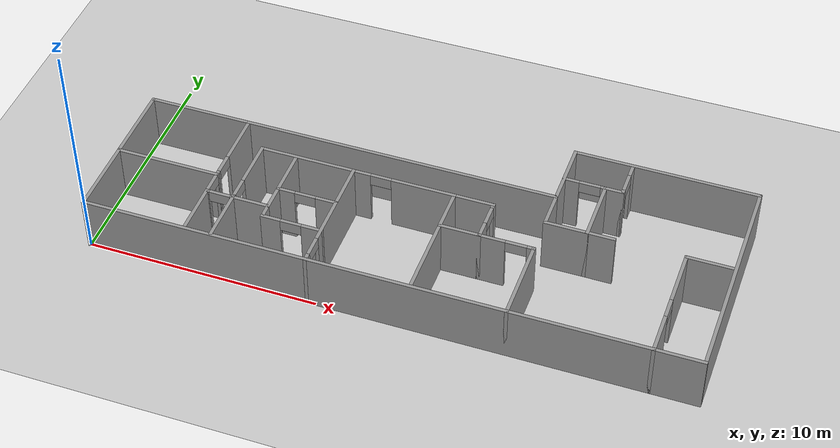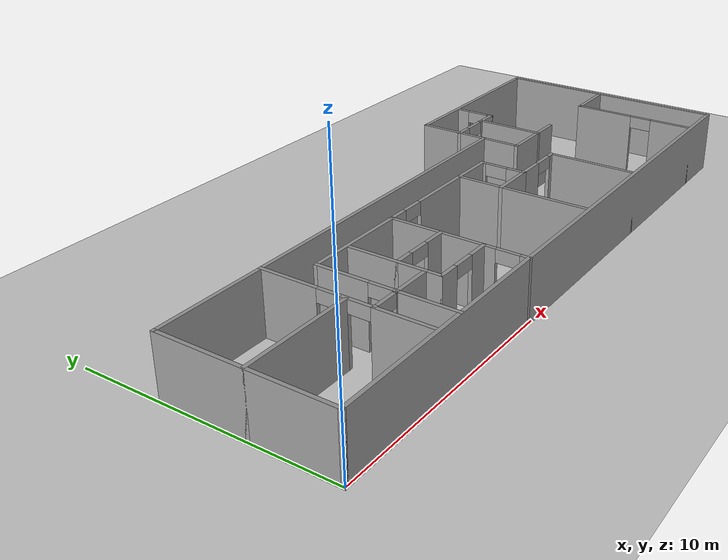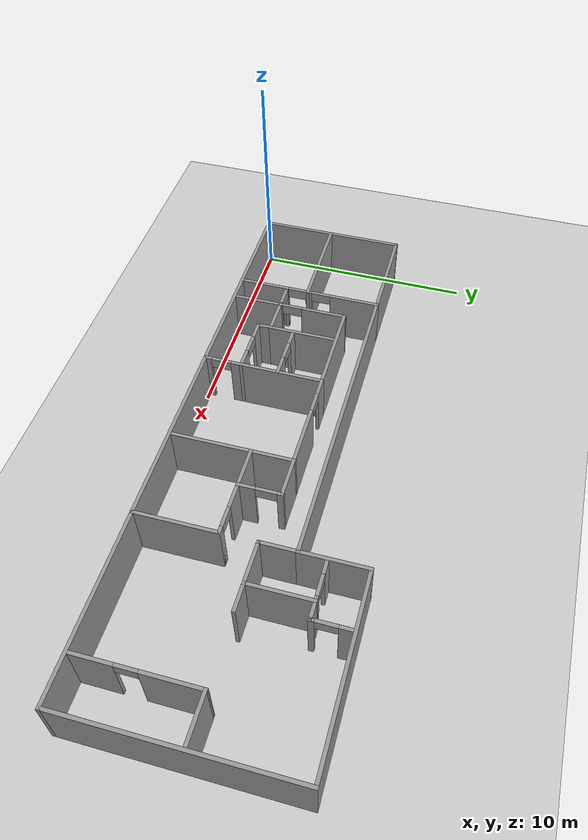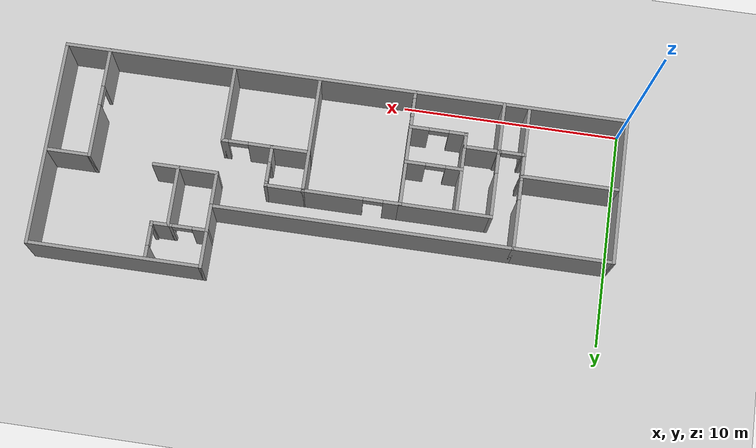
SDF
<sdf version="1.6">
 <world name="default">
  <model name="ground_plane">
   <static>1</static>
   <link name="link">
    <collision name="collision">
     <geometry><plane><normal>0 0 1</normal><size>100 100</size></plane></geometry>
     <surface>
      <contact><collide_bitmask>65535</collide_bitmask></contact>
      <friction><ode><mu>100</mu><mu2>50</mu2></ode></friction>
     </surface>
    </collision>
    <visual name="visual">
     <cast_shadows>0</cast_shadows>
     <geometry><plane><normal>0 0 1</normal><size>100 100</size></plane></geometry>
     <material>
      <script><uri>file://media/materials/scripts/gazebo.material</uri><name>Gazebo/Grey</name></script>
     </material>
    </visual>
   </link>
  </model>
  <model name="myBuilding">
   <pose>12.88 4.72 0 0 -0 0</pose>
   <link name="Wall_13">
    <collision name="Wall_13_Collision">
     <geometry><box><size>6.78 0.15 2.5</size></box></geometry>
     <pose>0 0 1.25 0 -0 0</pose>
    </collision>
    <visual name="Wall_13_Visual">
     <pose>0 0 1.25 0 -0 0</pose>
     <geometry><box><size>6.78 0.15 2.5</size></box></geometry>
     <material>
      <script><uri>file://media/materials/scripts/gazebo.material</uri><name>Gazebo/Grey</name></script>
      <ambient>1 1 1 1</ambient>
     </material>
     <meta><layer>0</layer></meta>
    </visual>
    <pose>-12.88 -1.405 0 0 -0 1.5708</pose>
   </link>
   <link name="Wall_17">
    <collision name="Wall_17_Collision">
     <geometry><box><size>9.5 0.15 2.5</size></box></geometry>
     <pose>0 0 1.25 0 -0 0</pose>
    </collision>
    <visual name="Wall_17_Visual">
     <pose>0 0 1.25 0 -0 0</pose>
     <geometry><box><size>9.5 0.15 2.5</size></box></geometry>
     <material>
      <script><uri>file://media/materials/scripts/gazebo.material</uri><name>Gazebo/Grey</name></script>
      <ambient>1 1 1 1</ambient>
     </material>
     <meta><layer>0</layer></meta>
    </visual>
    <pose>12.88 0.045 0 0 0 -1.5708</pose>
   </link>
   <link name="Wall_19">
    <collision name="Wall_19_Collision">
     <geometry><box><size>4.58 0.15 2.5</size></box></geometry>
     <pose>0 0 1.25 0 -0 0</pose>
    </collision>
    <visual name="Wall_19_Visual">
     <pose>0 0 1.25 0 -0 0</pose>
     <geometry><box><size>4.58 0.15 2.5</size></box></geometry>
     <material>
      <script><uri>file://media/materials/scripts/gazebo.material</uri><name>Gazebo/Grey</name></script>
      <ambient>1 1 1 1</ambient>
     </material>
     <meta><layer>0</layer></meta>
    </visual>
    <pose>-10.665 -1.45 0 0 -0 0</pose>
   </link>
   <link name="Wall_22">
    <pose>-8.45 -3.01 0 0 0 -1.5708</pose>
    <visual name="Wall_22_Visual_0">
     <pose>-1.57168 0 1.25 0 -0 0</pose>
     <geometry><box><size>0.126638 0.15 2.5</size></box></geometry>
     <material>
      <script><uri>file://media/materials/scripts/gazebo.material</uri><name>Gazebo/Grey</name></script>
      <ambient>1 1 1 1</ambient>
     </material>
     <meta><layer>0</layer></meta>
    </visual>
    <collision name="Wall_22_Collision_0">
     <geometry><box><size>0.126638 0.15 2.5</size></box></geometry>
     <pose>-1.57168 0 1.25 0 -0 0</pose>
    </collision>
    <visual name="Wall_22_Visual_1">
     <pose>0.503319 0 1.25 0 -0 0</pose>
     <geometry><box><size>2.26336 0.15 2.5</size></box></geometry>
     <material>
      <script><uri>file://media/materials/scripts/gazebo.material</uri><name>Gazebo/Grey</name></script>
      <ambient>1 1 1 1</ambient>
     </material>
     <meta><layer>0</layer></meta>
    </visual>
    <collision name="Wall_22_Collision_1">
     <geometry><box><size>2.26336 0.15 2.5</size></box></geometry>
     <pose>0.503319 0 1.25 0 -0 0</pose>
    </collision>
    <visual name="Wall_22_Visual_2">
     <pose>-1.06836 0 2.25 0 -0 0</pose>
     <geometry><box><size>0.88 0.15 0.5</size></box></geometry>
     <material>
      <script><uri>file://media/materials/scripts/gazebo.material</uri><name>Gazebo/Grey</name></script>
      <ambient>1 1 1 1</ambient>
     </material>
     <meta><layer>0</layer></meta>
    </visual>
    <collision name="Wall_22_Collision_2">
     <geometry><box><size>0.88 0.15 0.5</size></box></geometry>
     <pose>-1.06836 0 2.25 0 -0 0</pose>
    </collision>
   </link>
   <link name="Wall_24">
    <collision name="Wall_24_Collision">
     <geometry><box><size>4.58 0.15 2.5</size></box></geometry>
     <pose>0 0 1.25 0 -0 0</pose>
    </collision>
    <visual name="Wall_24_Visual">
     <pose>0 0 1.25 0 -0 0</pose>
     <geometry><box><size>4.58 0.15 2.5</size></box></geometry>
     <material>
      <script><uri>file://media/materials/scripts/gazebo.material</uri><name>Gazebo/Grey</name></script>
      <ambient>1 1 1 1</ambient>
     </material>
     <meta><layer>0</layer></meta>
    </visual>
    <pose>-10.665 1.91 0 0 -0 0</pose>
   </link>
   <link name="Wall_28">
    <pose>-8.45 0.23 0 0 0 -1.5708</pose>
    <visual name="Wall_28_Visual_0">
     <pose>-0.591583 0 1.25 0 -0 0</pose>
     <geometry><box><size>2.32683 0.15 2.5</size></box></geometry>
     <material>
      <script><uri>file://media/materials/scripts/gazebo.material</uri><name>Gazebo/Grey</name></script>
      <ambient>1 1 1 1</ambient>
     </material>
     <meta><layer>0</layer></meta>
    </visual>
    <collision name="Wall_28_Collision_0">
     <geometry><box><size>2.32683 0.15 2.5</size></box></geometry>
     <pose>-0.591583 0 1.25 0 -0 0</pose>
    </collision>
    <visual name="Wall_28_Visual_1">
     <pose>1.61342 0 1.25 0 -0 0</pose>
     <geometry><box><size>0.283165 0.15 2.5</size></box></geometry>
     <material>
      <script><uri>file://media/materials/scripts/gazebo.material</uri><name>Gazebo/Grey</name></script>
      <ambient>1 1 1 1</ambient>
     </material>
     <meta><layer>0</layer></meta>
    </visual>
    <collision name="Wall_28_Collision_1">
     <geometry><box><size>0.283165 0.15 2.5</size></box></geometry>
     <pose>1.61342 0 1.25 0 -0 0</pose>
    </collision>
    <visual name="Wall_28_Visual_2">
     <pose>1.02184 0 2.25 0 -0 0</pose>
     <geometry><box><size>0.9 0.15 0.5</size></box></geometry>
     <material>
      <script><uri>file://media/materials/scripts/gazebo.material</uri><name>Gazebo/Grey</name></script>
      <ambient>1 1 1 1</ambient>
     </material>
     <meta><layer>0</layer></meta>
    </visual>
    <collision name="Wall_28_Collision_2">
     <geometry><box><size>0.9 0.15 0.5</size></box></geometry>
     <pose>1.02184 0 2.25 0 -0 0</pose>
    </collision>
   </link>
   <link name="Wall_30">
    <pose>-7.3 -2.05 0 0 0 -1.5708</pose>
    <visual name="Wall_30_Visual_0">
     <pose>-1.68457 0 1.25 0 -0 0</pose>
     <geometry><box><size>2.12087 0.15 2.5</size></box></geometry>
     <material>
      <script><uri>file://media/materials/scripts/gazebo.material</uri><name>Gazebo/Grey</name></script>
      <ambient>1 1 1 1</ambient>
     </material>
     <meta><layer>0</layer></meta>
    </visual>
    <collision name="Wall_30_Collision_0">
     <geometry><box><size>2.12087 0.15 2.5</size></box></geometry>
     <pose>-1.68457 0 1.25 0 -0 0</pose>
    </collision>
    <visual name="Wall_30_Visual_1">
     <pose>1.51043 0 1.25 0 -0 0</pose>
     <geometry><box><size>2.46913 0.15 2.5</size></box></geometry>
     <material>
      <script><uri>file://media/materials/scripts/gazebo.material</uri><name>Gazebo/Grey</name></script>
      <ambient>1 1 1 1</ambient>
     </material>
     <meta><layer>0</layer></meta>
    </visual>
    <collision name="Wall_30_Collision_1">
     <geometry><box><size>2.46913 0.15 2.5</size></box></geometry>
     <pose>1.51043 0 1.25 0 -0 0</pose>
    </collision>
    <visual name="Wall_30_Visual_2">
     <pose>-0.174131 0 2.25 0 -0 0</pose>
     <geometry><box><size>0.9 0.15 0.5</size></box></geometry>
     <material>
      <script><uri>file://media/materials/scripts/gazebo.material</uri><name>Gazebo/Grey</name></script>
      <ambient>1 1 1 1</ambient>
     </material>
     <meta><layer>0</layer></meta>
    </visual>
    <collision name="Wall_30_Collision_2">
     <geometry><box><size>0.9 0.15 0.5</size></box></geometry>
     <pose>-0.174131 0 2.25 0 -0 0</pose>
    </collision>
   </link>
   <link name="Wall_36">
    <collision name="Wall_36_Collision">
     <geometry><box><size>4.22 0.15 2.5</size></box></geometry>
     <pose>0 0 1.25 0 -0 0</pose>
    </collision>
    <visual name="Wall_36_Visual">
     <pose>0 0 1.25 0 -0 0</pose>
     <geometry><box><size>4.22 0.15 2.5</size></box></geometry>
     <material>
      <script><uri>file://media/materials/scripts/gazebo.material</uri><name>Gazebo/Grey</name></script>
      <ambient>1 1 1 1</ambient>
     </material>
     <meta><layer>0</layer></meta>
    </visual>
    <pose>-5.265 0.62 0 0 -0 0</pose>
   </link>
   <link name="Wall_38">
    <pose>-3.23 -2.05 0 0 0 -1.5708</pose>
    <visual name="Wall_38_Visual_0">
     <pose>-0.635523 0 1.25 0 -0 0</pose>
     <geometry><box><size>4.21895 0.15 2.5</size></box></geometry>
     <material>
      <script><uri>file://media/materials/scripts/gazebo.material</uri><name>Gazebo/Grey</name></script>
      <ambient>1 1 1 1</ambient>
     </material>
     <meta><layer>0</layer></meta>
    </visual>
    <collision name="Wall_38_Collision_0">
     <geometry><box><size>4.21895 0.15 2.5</size></box></geometry>
     <pose>-0.635523 0 1.25 0 -0 0</pose>
    </collision>
    <visual name="Wall_38_Visual_1">
     <pose>2.55948 0 1.25 0 -0 0</pose>
     <geometry><box><size>0.371046 0.15 2.5</size></box></geometry>
     <material>
      <script><uri>file://media/materials/scripts/gazebo.material</uri><name>Gazebo/Grey</name></script>
      <ambient>1 1 1 1</ambient>
     </material>
     <meta><layer>0</layer></meta>
    </visual>
    <collision name="Wall_38_Collision_1">
     <geometry><box><size>0.371046 0.15 2.5</size></box></geometry>
     <pose>2.55948 0 1.25 0 -0 0</pose>
    </collision>
    <visual name="Wall_38_Visual_2">
     <pose>1.92395 0 2.25 0 -0 0</pose>
     <geometry><box><size>0.9 0.15 0.5</size></box></geometry>
     <material>
      <script><uri>file://media/materials/scripts/gazebo.material</uri><name>Gazebo/Grey</name></script>
      <ambient>1 1 1 1</ambient>
     </material>
     <meta><layer>0</layer></meta>
    </visual>
    <collision name="Wall_38_Collision_2">
     <geometry><box><size>0.9 0.15 0.5</size></box></geometry>
     <pose>1.92395 0 2.25 0 -0 0</pose>
    </collision>
   </link>
   <link name="Wall_42">
    <pose>-1.04 0.62 0 0 -0 0</pose>
    <visual name="Wall_42_Visual_0">
     <pose>-1.84475 0 1.25 0 -0 0</pose>
     <geometry><box><size>0.840504 0.15 2.5</size></box></geometry>
     <material>
      <script><uri>file://media/materials/scripts/gazebo.material</uri><name>Gazebo/Grey</name></script>
      <ambient>1 1 1 1</ambient>
     </material>
     <meta><layer>0</layer></meta>
    </visual>
    <collision name="Wall_42_Collision_0">
     <geometry><box><size>0.840504 0.15 2.5</size></box></geometry>
     <pose>-1.84475 0 1.25 0 -0 0</pose>
    </collision>
    <visual name="Wall_42_Visual_1">
     <pose>0.870252 0 1.25 0 -0 0</pose>
     <geometry><box><size>2.7895 0.15 2.5</size></box></geometry>
     <material>
      <script><uri>file://media/materials/scripts/gazebo.material</uri><name>Gazebo/Grey</name></script>
      <ambient>1 1 1 1</ambient>
     </material>
     <meta><layer>0</layer></meta>
    </visual>
    <collision name="Wall_42_Collision_1">
     <geometry><box><size>2.7895 0.15 2.5</size></box></geometry>
     <pose>0.870252 0 1.25 0 -0 0</pose>
    </collision>
    <visual name="Wall_42_Visual_2">
     <pose>-0.974496 0 2.25 0 -0 0</pose>
     <geometry><box><size>0.9 0.15 0.5</size></box></geometry>
     <material>
      <script><uri>file://media/materials/scripts/gazebo.material</uri><name>Gazebo/Grey</name></script>
      <ambient>1 1 1 1</ambient>
     </material>
     <meta><layer>0</layer></meta>
    </visual>
    <collision name="Wall_42_Collision_2">
     <geometry><box><size>0.9 0.15 0.5</size></box></geometry>
     <pose>-0.974496 0 2.25 0 -0 0</pose>
    </collision>
   </link>
   <link name="Wall_44">
    <collision name="Wall_44_Collision">
     <geometry><box><size>5.34 0.15 2.5</size></box></geometry>
     <pose>0 0 1.25 0 -0 0</pose>
    </collision>
    <visual name="Wall_44_Visual">
     <pose>0 0 1.25 0 -0 0</pose>
     <geometry><box><size>5.34 0.15 2.5</size></box></geometry>
     <material>
      <script><uri>file://media/materials/scripts/gazebo.material</uri><name>Gazebo/Grey</name></script>
      <ambient>1 1 1 1</ambient>
     </material>
     <meta><layer>0</layer></meta>
    </visual>
    <pose>1.15 -1.975 0 0 0 -1.5708</pose>
   </link>
   <link name="Wall_46">
    <collision name="Wall_46_Collision">
     <geometry><box><size>1.7 0.15 2.5</size></box></geometry>
     <pose>0 0 1.25 0 -0 0</pose>
    </collision>
    <visual name="Wall_46_Visual">
     <pose>0 0 1.25 0 -0 0</pose>
     <geometry><box><size>1.7 0.15 2.5</size></box></geometry>
     <material>
      <script><uri>file://media/materials/scripts/gazebo.material</uri><name>Gazebo/Grey</name></script>
      <ambient>1 1 1 1</ambient>
     </material>
     <meta><layer>0</layer></meta>
    </visual>
    <pose>-6.525 -2.46 0 0 -0 0</pose>
   </link>
   <link name="Wall_48">
    <collision name="Wall_48_Collision">
     <geometry><box><size>3.08 0.15 2.5</size></box></geometry>
     <pose>0 0 1.25 0 -0 0</pose>
    </collision>
    <visual name="Wall_48_Visual">
     <pose>0 0 1.25 0 -0 0</pose>
     <geometry><box><size>3.08 0.15 2.5</size></box></geometry>
     <material>
      <script><uri>file://media/materials/scripts/gazebo.material</uri><name>Gazebo/Grey</name></script>
      <ambient>1 1 1 1</ambient>
     </material>
     <meta><layer>0</layer></meta>
    </visual>
    <pose>-5.75 -0.995 0 0 -0 1.5708</pose>
   </link>
   <link name="Wall_5">
    <collision name="Wall_5_Collision">
     <geometry><box><size>25.91 0.15 2.5</size></box></geometry>
     <pose>0 0 1.25 0 -0 0</pose>
    </collision>
    <visual name="Wall_5_Visual">
     <pose>0 0 1.25 0 -0 0</pose>
     <geometry><box><size>25.91 0.15 2.5</size></box></geometry>
     <material>
      <script><uri>file://media/materials/scripts/gazebo.material</uri><name>Gazebo/Grey</name></script>
      <ambient>1 1 1 1</ambient>
     </material>
     <meta><layer>0</layer></meta>
    </visual>
    <pose>0 -4.72 0 0 -0 0</pose>
   </link>
   <link name="Wall_50">
    <pose>-7.84 -2.46 0 0 -0 3.14159</pose>
    <visual name="Wall_50_Visual_0">
     <pose>-0.514098 0 1.25 0 -0 0</pose>
     <geometry><box><size>0.201804 0.15 2.5</size></box></geometry>
     <material>
      <script><uri>file://media/materials/scripts/gazebo.material</uri><name>Gazebo/Grey</name></script>
      <ambient>1 1 1 1</ambient>
     </material>
     <meta><layer>0</layer></meta>
    </visual>
    <collision name="Wall_50_Collision_0">
     <geometry><box><size>0.201804 0.15 2.5</size></box></geometry>
     <pose>-0.514098 0 1.25 0 -0 0</pose>
    </collision>
    <visual name="Wall_50_Visual_1">
     <pose>0.550902 0 1.25 0 -0 0</pose>
     <geometry><box><size>0.128196 0.15 2.5</size></box></geometry>
     <material>
      <script><uri>file://media/materials/scripts/gazebo.material</uri><name>Gazebo/Grey</name></script>
      <ambient>1 1 1 1</ambient>
     </material>
     <meta><layer>0</layer></meta>
    </visual>
    <collision name="Wall_50_Collision_1">
     <geometry><box><size>0.128196 0.15 2.5</size></box></geometry>
     <pose>0.550902 0 1.25 0 -0 0</pose>
    </collision>
    <visual name="Wall_50_Visual_2">
     <pose>0.036804 0 2.25 0 -0 0</pose>
     <geometry><box><size>0.9 0.15 0.5</size></box></geometry>
     <material>
      <script><uri>file://media/materials/scripts/gazebo.material</uri><name>Gazebo/Grey</name></script>
      <ambient>1 1 1 1</ambient>
     </material>
     <meta><layer>0</layer></meta>
    </visual>
    <collision name="Wall_50_Collision_2">
     <geometry><box><size>0.9 0.15 0.5</size></box></geometry>
     <pose>0.036804 0 2.25 0 -0 0</pose>
    </collision>
   </link>
   <link name="Wall_52">
    <collision name="Wall_52_Collision">
     <geometry><box><size>1.82 0.15 2.5</size></box></geometry>
     <pose>0 0 1.25 0 -0 0</pose>
    </collision>
    <visual name="Wall_52_Visual">
     <pose>0 0 1.25 0 -0 0</pose>
     <geometry><box><size>1.82 0.15 2.5</size></box></geometry>
     <material>
      <script><uri>file://media/materials/scripts/gazebo.material</uri><name>Gazebo/Grey</name></script>
      <ambient>1 1 1 1</ambient>
     </material>
     <meta><layer>0</layer></meta>
    </visual>
    <pose>1.985 0.62 0 0 -0 0</pose>
   </link>
   <link name="Wall_54">
    <pose>2.82 -0.285 0 0 0 -1.5708</pose>
    <visual name="Wall_54_Visual_0">
     <pose>-0.847616 0 1.25 0 -0 0</pose>
     <geometry><box><size>0.264769 0.15 2.5</size></box></geometry>
     <material>
      <script><uri>file://media/materials/scripts/gazebo.material</uri><name>Gazebo/Grey</name></script>
      <ambient>1 1 1 1</ambient>
     </material>
     <meta><layer>0</layer></meta>
    </visual>
    <collision name="Wall_54_Collision_0">
     <geometry><box><size>0.264769 0.15 2.5</size></box></geometry>
     <pose>-0.847616 0 1.25 0 -0 0</pose>
    </collision>
    <visual name="Wall_54_Visual_1">
     <pose>0.582384 0 1.25 0 -0 0</pose>
     <geometry><box><size>0.795231 0.15 2.5</size></box></geometry>
     <material>
      <script><uri>file://media/materials/scripts/gazebo.material</uri><name>Gazebo/Grey</name></script>
      <ambient>1 1 1 1</ambient>
     </material>
     <meta><layer>0</layer></meta>
    </visual>
    <collision name="Wall_54_Collision_1">
     <geometry><box><size>0.795231 0.15 2.5</size></box></geometry>
     <pose>0.582384 0 1.25 0 -0 0</pose>
    </collision>
    <visual name="Wall_54_Visual_2">
     <pose>-0.265231 0 2.25 0 -0 0</pose>
     <geometry><box><size>0.9 0.15 0.5</size></box></geometry>
     <material>
      <script><uri>file://media/materials/scripts/gazebo.material</uri><name>Gazebo/Grey</name></script>
      <ambient>1 1 1 1</ambient>
     </material>
     <meta><layer>0</layer></meta>
    </visual>
    <collision name="Wall_54_Collision_2">
     <geometry><box><size>0.9 0.15 0.5</size></box></geometry>
     <pose>-0.265231 0 2.25 0 -0 0</pose>
    </collision>
   </link>
   <link name="Wall_56">
    <collision name="Wall_56_Collision">
     <geometry><box><size>1.82 0.15 2.5</size></box></geometry>
     <pose>0 0 1.25 0 -0 0</pose>
    </collision>
    <visual name="Wall_56_Visual">
     <pose>0 0 1.25 0 -0 0</pose>
     <geometry><box><size>1.82 0.15 2.5</size></box></geometry>
     <material>
      <script><uri>file://media/materials/scripts/gazebo.material</uri><name>Gazebo/Grey</name></script>
      <ambient>1 1 1 1</ambient>
     </material>
     <meta><layer>0</layer></meta>
    </visual>
    <pose>1.985 -1.19 0 0 -0 3.14159</pose>
   </link>
   <link name="Wall_58">
    <pose>3.95 -1.19 0 0 -0 0</pose>
    <visual name="Wall_58_Visual_0">
     <pose>-0.625709 0 1.25 0 -0 0</pose>
     <geometry><box><size>1.15858 0.15 2.5</size></box></geometry>
     <material>
      <script><uri>file://media/materials/scripts/gazebo.material</uri><name>Gazebo/Grey</name></script>
      <ambient>1 1 1 1</ambient>
     </material>
     <meta><layer>0</layer></meta>
    </visual>
    <collision name="Wall_58_Collision_0">
     <geometry><box><size>1.15858 0.15 2.5</size></box></geometry>
     <pose>-0.625709 0 1.25 0 -0 0</pose>
    </collision>
    <visual name="Wall_58_Visual_1">
     <pose>1.02929 0 1.25 0 -0 0</pose>
     <geometry><box><size>0.351418 0.15 2.5</size></box></geometry>
     <material>
      <script><uri>file://media/materials/scripts/gazebo.material</uri><name>Gazebo/Grey</name></script>
      <ambient>1 1 1 1</ambient>
     </material>
     <meta><layer>0</layer></meta>
    </visual>
    <collision name="Wall_58_Collision_1">
     <geometry><box><size>0.351418 0.15 2.5</size></box></geometry>
     <pose>1.02929 0 1.25 0 -0 0</pose>
    </collision>
    <visual name="Wall_58_Visual_2">
     <pose>0.403582 0 2.25 0 -0 0</pose>
     <geometry><box><size>0.9 0.15 0.5</size></box></geometry>
     <material>
      <script><uri>file://media/materials/scripts/gazebo.material</uri><name>Gazebo/Grey</name></script>
      <ambient>1 1 1 1</ambient>
     </material>
     <meta><layer>0</layer></meta>
    </visual>
    <collision name="Wall_58_Collision_2">
     <geometry><box><size>0.9 0.15 0.5</size></box></geometry>
     <pose>0.403582 0 2.25 0 -0 0</pose>
    </collision>
   </link>
   <link name="Wall_60">
    <collision name="Wall_60_Collision">
     <geometry><box><size>3.68 0.15 2.5</size></box></geometry>
     <pose>0 0 1.25 0 -0 0</pose>
    </collision>
    <visual name="Wall_60_Visual">
     <pose>0 0 1.25 0 -0 0</pose>
     <geometry><box><size>3.68 0.15 2.5</size></box></geometry>
     <material>
      <script><uri>file://media/materials/scripts/gazebo.material</uri><name>Gazebo/Grey</name></script>
      <ambient>1 1 1 1</ambient>
     </material>
     <meta><layer>0</layer></meta>
    </visual>
    <pose>5.08 -2.955 0 0 0 -1.5708</pose>
   </link>
   <link name="Wall_62">
    <collision name="Wall_62_Collision">
     <geometry><box><size>13.68 0.15 2.5</size></box></geometry>
     <pose>0 0 1.25 0 -0 0</pose>
    </collision>
    <visual name="Wall_62_Visual">
     <pose>0 0 1.25 0 -0 0</pose>
     <geometry><box><size>13.68 0.15 2.5</size></box></geometry>
     <material>
      <script><uri>file://media/materials/scripts/gazebo.material</uri><name>Gazebo/Grey</name></script>
      <ambient>1 1 1 1</ambient>
     </material>
     <meta><layer>0</layer></meta>
    </visual>
    <pose>-1.685 1.91 0 0 -0 0</pose>
   </link>
   <link name="Wall_64">
    <collision name="Wall_64_Collision">
     <geometry><box><size>2.96 0.15 2.5</size></box></geometry>
     <pose>0 0 1.25 0 -0 0</pose>
    </collision>
    <visual name="Wall_64_Visual">
     <pose>0 0 1.25 0 -0 0</pose>
     <geometry><box><size>2.96 0.15 2.5</size></box></geometry>
     <material>
      <script><uri>file://media/materials/scripts/gazebo.material</uri><name>Gazebo/Grey</name></script>
      <ambient>1 1 1 1</ambient>
     </material>
     <meta><layer>0</layer></meta>
    </visual>
    <pose>5.08 3.315 0 0 -0 1.5708</pose>
   </link>
   <link name="Wall_66">
    <collision name="Wall_66_Collision">
     <geometry><box><size>7.95 0.15 2.5</size></box></geometry>
     <pose>0 0 1.25 0 -0 0</pose>
    </collision>
    <visual name="Wall_66_Visual">
     <pose>0 0 1.25 0 -0 0</pose>
     <geometry><box><size>7.95 0.15 2.5</size></box></geometry>
     <material>
      <script><uri>file://media/materials/scripts/gazebo.material</uri><name>Gazebo/Grey</name></script>
      <ambient>1 1 1 1</ambient>
     </material>
     <meta><layer>0</layer></meta>
    </visual>
    <pose>8.98 4.72 0 0 -0 0</pose>
   </link>
   <link name="Wall_70">
    <collision name="Wall_70_Collision">
     <geometry><box><size>1.69 0.15 2.5</size></box></geometry>
     <pose>0 0 1.25 0 -0 0</pose>
    </collision>
    <visual name="Wall_70_Visual">
     <pose>0 0 1.25 0 -0 0</pose>
     <geometry><box><size>1.69 0.15 2.5</size></box></geometry>
     <material>
      <script><uri>file://media/materials/scripts/gazebo.material</uri><name>Gazebo/Grey</name></script>
      <ambient>1 1 1 1</ambient>
     </material>
     <meta><layer>0</layer></meta>
    </visual>
    <pose>5.08 1.14 0 0 -0 1.5708</pose>
   </link>
   <link name="Wall_73">
    <pose>-4.49 -1.38 0 0 -0 0</pose>
    <visual name="Wall_73_Visual_0">
     <pose>-0.930662 0 1.25 0 -0 0</pose>
     <geometry><box><size>0.808676 0.15 2.5</size></box></geometry>
     <material>
      <script><uri>file://media/materials/scripts/gazebo.material</uri><name>Gazebo/Grey</name></script>
      <ambient>1 1 1 1</ambient>
     </material>
     <meta><layer>0</layer></meta>
    </visual>
    <collision name="Wall_73_Collision_0">
     <geometry><box><size>0.808676 0.15 2.5</size></box></geometry>
     <pose>-0.930662 0 1.25 0 -0 0</pose>
    </collision>
    <visual name="Wall_73_Visual_1">
     <pose>0.854338 0 1.25 0 -0 0</pose>
     <geometry><box><size>0.961324 0.15 2.5</size></box></geometry>
     <material>
      <script><uri>file://media/materials/scripts/gazebo.material</uri><name>Gazebo/Grey</name></script>
      <ambient>1 1 1 1</ambient>
     </material>
     <meta><layer>0</layer></meta>
    </visual>
    <collision name="Wall_73_Collision_1">
     <geometry><box><size>0.961324 0.15 2.5</size></box></geometry>
     <pose>0.854338 0 1.25 0 -0 0</pose>
    </collision>
    <visual name="Wall_73_Visual_2">
     <pose>-0.076324 0 2.25 0 -0 0</pose>
     <geometry><box><size>0.9 0.15 0.5</size></box></geometry>
     <material>
      <script><uri>file://media/materials/scripts/gazebo.material</uri><name>Gazebo/Grey</name></script>
      <ambient>1 1 1 1</ambient>
     </material>
     <meta><layer>0</layer></meta>
    </visual>
    <collision name="Wall_73_Collision_2">
     <geometry><box><size>0.9 0.15 0.5</size></box></geometry>
     <pose>-0.076324 0 2.25 0 -0 0</pose>
    </collision>
   </link>
   <link name="Wall_75">
    <pose>-4.49 -3.05 0 0 -0 0</pose>
    <visual name="Wall_75_Visual_0">
     <pose>-0.907672 0 1.25 0 -0 0</pose>
     <geometry><box><size>0.854655 0.15 2.5</size></box></geometry>
     <material>
      <script><uri>file://media/materials/scripts/gazebo.material</uri><name>Gazebo/Grey</name></script>
      <ambient>1 1 1 1</ambient>
     </material>
     <meta><layer>0</layer></meta>
    </visual>
    <collision name="Wall_75_Collision_0">
     <geometry><box><size>0.854655 0.15 2.5</size></box></geometry>
     <pose>-0.907672 0 1.25 0 -0 0</pose>
    </collision>
    <visual name="Wall_75_Visual_1">
     <pose>0.877328 0 1.25 0 -0 0</pose>
     <geometry><box><size>0.915345 0.15 2.5</size></box></geometry>
     <material>
      <script><uri>file://media/materials/scripts/gazebo.material</uri><name>Gazebo/Grey</name></script>
      <ambient>1 1 1 1</ambient>
     </material>
     <meta><layer>0</layer></meta>
    </visual>
    <collision name="Wall_75_Collision_1">
     <geometry><box><size>0.915345 0.15 2.5</size></box></geometry>
     <pose>0.877328 0 1.25 0 -0 0</pose>
    </collision>
    <visual name="Wall_75_Visual_2">
     <pose>-0.030345 0 2.25 0 -0 0</pose>
     <geometry><box><size>0.9 0.15 0.5</size></box></geometry>
     <material>
      <script><uri>file://media/materials/scripts/gazebo.material</uri><name>Gazebo/Grey</name></script>
      <ambient>1 1 1 1</ambient>
     </material>
     <meta><layer>0</layer></meta>
    </visual>
    <collision name="Wall_75_Collision_2">
     <geometry><box><size>0.9 0.15 0.5</size></box></geometry>
     <pose>-0.030345 0 2.25 0 -0 0</pose>
    </collision>
   </link>
   <link name="Wall_77">
    <collision name="Wall_77_Collision">
     <geometry><box><size>0.74 0.15 2.5</size></box></geometry>
     <pose>0 0 1.25 0 -0 0</pose>
    </collision>
    <visual name="Wall_77_Visual">
     <pose>0 0 1.25 0 -0 0</pose>
     <geometry><box><size>0.74 0.15 2.5</size></box></geometry>
     <material>
      <script><uri>file://media/materials/scripts/gazebo.material</uri><name>Gazebo/Grey</name></script>
      <ambient>1 1 1 1</ambient>
     </material>
     <meta><layer>0</layer></meta>
    </visual>
    <pose>-5.75 -2.755 0 0 0 -1.5708</pose>
   </link>
   <link name="Wall_79">
    <pose>6.32 3.06 0 0 -0 0</pose>
    <visual name="Wall_79_Visual_0">
     <pose>-0.951896 0 1.25 0 -0 0</pose>
     <geometry><box><size>0.726208 0.15 2.5</size></box></geometry>
     <material>
      <script><uri>file://media/materials/scripts/gazebo.material</uri><name>Gazebo/Grey</name></script>
      <ambient>1 1 1 1</ambient>
     </material>
     <meta><layer>0</layer></meta>
    </visual>
    <collision name="Wall_79_Collision_0">
     <geometry><box><size>0.726208 0.15 2.5</size></box></geometry>
     <pose>-0.951896 0 1.25 0 -0 0</pose>
    </collision>
    <visual name="Wall_79_Visual_1">
     <pose>0.813104 0 1.25 0 -0 0</pose>
     <geometry><box><size>1.00379 0.15 2.5</size></box></geometry>
     <material>
      <script><uri>file://media/materials/scripts/gazebo.material</uri><name>Gazebo/Grey</name></script>
      <ambient>1 1 1 1</ambient>
     </material>
     <meta><layer>0</layer></meta>
    </visual>
    <collision name="Wall_79_Collision_1">
     <geometry><box><size>1.00379 0.15 2.5</size></box></geometry>
     <pose>0.813104 0 1.25 0 -0 0</pose>
    </collision>
    <visual name="Wall_79_Visual_2">
     <pose>-0.138792 0 2.25 0 -0 0</pose>
     <geometry><box><size>0.9 0.15 0.5</size></box></geometry>
     <material>
      <script><uri>file://media/materials/scripts/gazebo.material</uri><name>Gazebo/Grey</name></script>
      <ambient>1 1 1 1</ambient>
     </material>
     <meta><layer>0</layer></meta>
    </visual>
    <collision name="Wall_79_Collision_2">
     <geometry><box><size>0.9 0.15 0.5</size></box></geometry>
     <pose>-0.138792 0 2.25 0 -0 0</pose>
    </collision>
   </link>
   <link name="Wall_81">
    <pose>7.56 3.815 0 0 -0 1.5708</pose>
    <visual name="Wall_81_Visual_0">
     <pose>-0.716566 0 1.25 0 -0 0</pose>
     <geometry><box><size>0.226868 0.15 2.5</size></box></geometry>
     <material>
      <script><uri>file://media/materials/scripts/gazebo.material</uri><name>Gazebo/Grey</name></script>
      <ambient>1 1 1 1</ambient>
     </material>
     <meta><layer>0</layer></meta>
    </visual>
    <collision name="Wall_81_Collision_0">
     <geometry><box><size>0.226868 0.15 2.5</size></box></geometry>
     <pose>-0.716566 0 1.25 0 -0 0</pose>
    </collision>
    <visual name="Wall_81_Visual_1">
     <pose>0.563434 0 1.25 0 -0 0</pose>
     <geometry><box><size>0.533132 0.15 2.5</size></box></geometry>
     <material>
      <script><uri>file://media/materials/scripts/gazebo.material</uri><name>Gazebo/Grey</name></script>
      <ambient>1 1 1 1</ambient>
     </material>
     <meta><layer>0</layer></meta>
    </visual>
    <collision name="Wall_81_Collision_1">
     <geometry><box><size>0.533132 0.15 2.5</size></box></geometry>
     <pose>0.563434 0 1.25 0 -0 0</pose>
    </collision>
    <visual name="Wall_81_Visual_2">
     <pose>-0.153132 0 2.25 0 -0 0</pose>
     <geometry><box><size>0.9 0.15 0.5</size></box></geometry>
     <material>
      <script><uri>file://media/materials/scripts/gazebo.material</uri><name>Gazebo/Grey</name></script>
      <ambient>1 1 1 1</ambient>
     </material>
     <meta><layer>0</layer></meta>
    </visual>
    <collision name="Wall_81_Collision_2">
     <geometry><box><size>0.9 0.15 0.5</size></box></geometry>
     <pose>-0.153132 0 2.25 0 -0 0</pose>
    </collision>
   </link>
   <link name="Wall_83">
    <collision name="Wall_83_Collision">
     <geometry><box><size>2.84 0.15 2.5</size></box></geometry>
     <pose>0 0 1.25 0 -0 0</pose>
    </collision>
    <visual name="Wall_83_Visual">
     <pose>0 0 1.25 0 -0 0</pose>
     <geometry><box><size>2.84 0.15 2.5</size></box></geometry>
     <material>
      <script><uri>file://media/materials/scripts/gazebo.material</uri><name>Gazebo/Grey</name></script>
      <ambient>1 1 1 1</ambient>
     </material>
     <meta><layer>0</layer></meta>
    </visual>
    <pose>6.83 1.715 0 0 0 -1.5708</pose>
   </link>
   <link name="Wall_85">
    <pose>10.88 -2.175 0 0 -0 1.5708</pose>
    <visual name="Wall_85_Visual_0">
     <pose>-1.69586 0 1.25 0 -0 0</pose>
     <geometry><box><size>1.84828 0.15 2.5</size></box></geometry>
     <material>
      <script><uri>file://media/materials/scripts/gazebo.material</uri><name>Gazebo/Grey</name></script>
      <ambient>1 1 1 1</ambient>
     </material>
     <meta><layer>0</layer></meta>
    </visual>
    <collision name="Wall_85_Collision_0">
     <geometry><box><size>1.84828 0.15 2.5</size></box></geometry>
     <pose>-1.69586 0 1.25 0 -0 0</pose>
    </collision>
    <visual name="Wall_85_Visual_1">
     <pose>1.37414 0 1.25 0 -0 0</pose>
     <geometry><box><size>2.49172 0.15 2.5</size></box></geometry>
     <material>
      <script><uri>file://media/materials/scripts/gazebo.material</uri><name>Gazebo/Grey</name></script>
      <ambient>1 1 1 1</ambient>
     </material>
     <meta><layer>0</layer></meta>
    </visual>
    <collision name="Wall_85_Collision_1">
     <geometry><box><size>2.49172 0.15 2.5</size></box></geometry>
     <pose>1.37414 0 1.25 0 -0 0</pose>
    </collision>
    <visual name="Wall_85_Visual_2">
     <pose>-0.321716 0 2.25 0 -0 0</pose>
     <geometry><box><size>0.9 0.15 0.5</size></box></geometry>
     <material>
      <script><uri>file://media/materials/scripts/gazebo.material</uri><name>Gazebo/Grey</name></script>
      <ambient>1 1 1 1</ambient>
     </material>
     <meta><layer>0</layer></meta>
    </visual>
    <collision name="Wall_85_Collision_2">
     <geometry><box><size>0.9 0.15 0.5</size></box></geometry>
     <pose>-0.321716 0 2.25 0 -0 0</pose>
    </collision>
   </link>
   <link name="Wall_87">
    <collision name="Wall_87_Collision">
     <geometry><box><size>3 0.15 2.5</size></box></geometry>
     <pose>0 0 1.25 0 -0 0</pose>
    </collision>
    <visual name="Wall_87_Visual">
     <pose>0 0 1.25 0 -0 0</pose>
     <geometry><box><size>3 0.15 2.5</size></box></geometry>
     <material>
      <script><uri>file://media/materials/scripts/gazebo.material</uri><name>Gazebo/Grey</name></script>
      <ambient>1 1 1 1</ambient>
     </material>
     <meta><layer>0</layer></meta>
    </visual>
    <pose>6.505 0.37 0 0 -0 0</pose>
   </link>
   <link name="Wall_89">
    <collision name="Wall_89_Collision">
     <geometry><box><size>2 0.15 2.5</size></box></geometry>
     <pose>0 0 1.25 0 -0 0</pose>
    </collision>
    <visual name="Wall_89_Visual">
     <pose>0 0 1.25 0 -0 0</pose>
     <geometry><box><size>2 0.15 2.5</size></box></geometry>
     <material>
      <script><uri>file://media/materials/scripts/gazebo.material</uri><name>Gazebo/Grey</name></script>
      <ambient>1 1 1 1</ambient>
     </material>
     <meta><layer>0</layer></meta>
    </visual>
    <pose>11.805 0.37 0 0 -0 0</pose>
   </link>
   <static>1</static>
  </model>
 </world>
</sdf>
